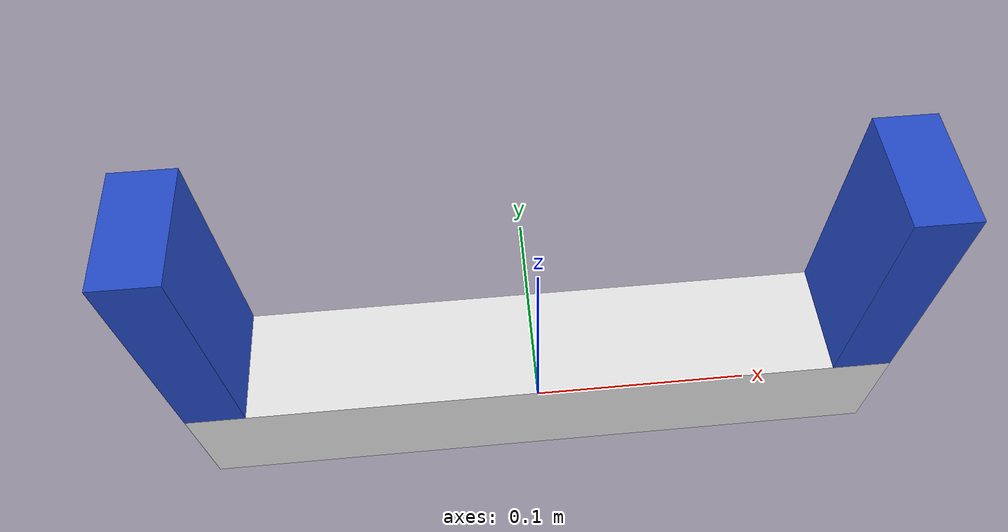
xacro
<?xml version="1.0"?>
<robot xmlns:xacro="http://www.ros.org/wiki/xacro" name="gripper">

    <!-- Gripper properties -->
    <!-- Base -->
    <xacro:property name="gripper_base_l" value="0.300" />
    <xacro:property name="gripper_base_w" value="0.050" />
    <xacro:property name="gripper_base_h" value="0.050" />

    <!-- Slider -->
    <xacro:property name="slider_l" value="0.025" />
    <xacro:property name="slider_w" value="0.050" />
    <xacro:property name="slider_h" value="0.100" />

    <!-- Gripper Kinematics -->
    <xacro:property name="gripper_base_xyz" value="0.0 0.0 ${gripper_base_h/2}" />
    <xacro:property name="gripper_base_rpy" value="0.0 0.0 0.0" />

    <!-- Slider0 Kinematics -->
    <xacro:property name="slider0_xyz" value="0.0 0.0 ${slider_h/2}"/>
    <xacro:property name="slider0_rpy" value="0.0 0.0 0.0" />
    <xacro:property name="slider0_joint_xyz" value="${(gripper_base_l/2) - (slider_l/2)} 0.0 ${gripper_base_h}" />
    <xacro:property name="slider0_joint_rpy" value="0.0 0.0 0.0" />

    <!-- Slider1 Kinematics -->
    <xacro:property name="slider1_xyz" value="0.0 0.0 ${slider_h/2}" />
    <xacro:property name="slider1_rpy" value="0.0 0.0 0.0"  />
    <xacro:property name="slider1_joint_xyz" value="${-(gripper_base_l/2) + (slider_l/2)} 0.0 ${gripper_base_h}" />
    <xacro:property name="slider1_joint_rpy" value="0.0 0.0 0.0"  />

    <!-- Tcp Kinematics -->
    <xacro:property name="tcp_xyz" value="0.0 0.0 ${gripper_base_h + slider_h/2}" />
    <xacro:property name="tcp_rpy" value="0.0 0.0 0.0"  />

    <!-- The first link of the gripper -->
    <!-- Fixed base-->
    <link name="gripper_base_link">
        <visual>
            <origin xyz="${gripper_base_xyz}" rpy="${gripper_base_rpy}"/>
            <geometry>
                <box size="${gripper_base_l} ${gripper_base_w} ${gripper_base_h}"/>
            </geometry>
            <material name="white"/>
        </visual>
        <collision>
            <origin xyz="${gripper_base_xyz}" rpy="${gripper_base_rpy}"/>
            <geometry>
                <box size="${gripper_base_l} ${gripper_base_w} ${gripper_base_h}"/>
            </geometry>
        </collision>
        <xacro:inertial_box mass="0.5" x="${gripper_base_l}" y="${gripper_base_w}" z="${gripper_base_h}">
            <origin xyz="${gripper_base_xyz}" rpy="${gripper_base_rpy}"/>
        </xacro:inertial_box>
    </link>

    <!-- Base to slider0 -->
    <joint name="slider0_joint" type="prismatic">
        <origin xyz="${slider0_joint_xyz}" rpy="${slider0_joint_rpy}"/>
        <parent link="gripper_base_link"/>
        <child link="slider0_link"/>
        <axis xyz="1 0 0"/>
        <limit lower="${-gripper_base_l/2}" upper="0" velocity="100" effort="100"/>
        <dynamics damping="${damping}" friction="${friction}" />
    </joint>

    <!-- The first slider-->
    <link name="slider0_link">
        <visual>
            <origin xyz="${slider0_xyz}" rpy="${slider0_rpy}"/>
            <geometry>
                <box size="${slider_l} ${slider_w} ${slider_h}"/>
            </geometry>
            <material name="blue"/>
        </visual>
        <collision>
            <origin xyz="${slider0_xyz}" rpy="${slider0_rpy}"/>
            <geometry>
                <box size="${slider_l} ${slider_w} ${slider_h}"/>
            </geometry>
        </collision>
        <xacro:inertial_box mass="0.1" x="${slider_l}" y="${slider_w}" z="${slider_h}">
            <origin xyz="${slider0_xyz}" rpy="${slider0_rpy}"/>
        </xacro:inertial_box>
    </link>

    <!-- Base to slider1 -->
    <joint name="slider1_joint" type="prismatic">
        <origin xyz="${slider1_joint_xyz}" rpy="${slider1_joint_rpy}"/>
        <parent link="gripper_base_link"/>
        <child link="slider1_link"/>
        <axis xyz="1 0 0"/>
        <limit lower="0" upper="${gripper_base_l/2}" velocity="100" effort="100"/>
        <dynamics damping="${damping}" friction="${friction}" />
    </joint>

    <!-- The second slider-->
    <link name="slider1_link">
        <visual>
            <origin xyz="${slider1_xyz}" rpy="${slider1_rpy}"/>
            <geometry>
                <box size="${slider_l} ${slider_w} ${slider_h}"/>
            </geometry>
            <material name="blue"/>
        </visual>
        <collision>
            <origin xyz="${slider1_xyz}" rpy="${slider1_rpy}"/>
            <geometry>
                <box size="${slider_l} ${slider_w} ${slider_h}"/>
            </geometry>
        </collision>
        <xacro:inertial_box mass="0.1" x="${slider_l}" y="${slider_w}" z="${slider_h}">
            <origin xyz="${slider1_xyz}" rpy="${slider1_rpy}"/>
        </xacro:inertial_box>
    </link>
</robot>
